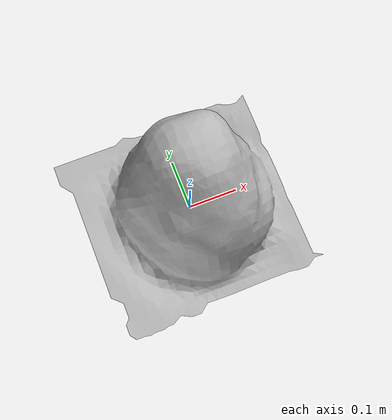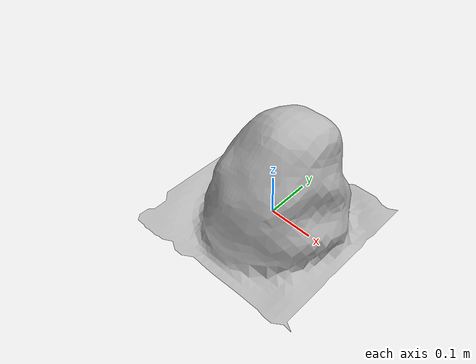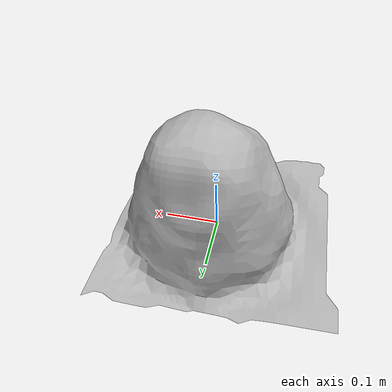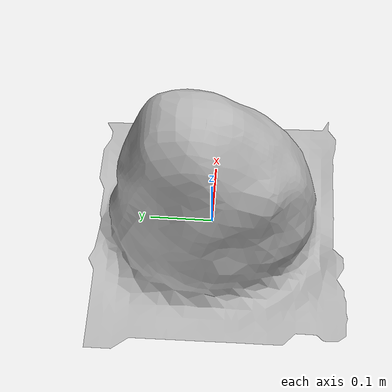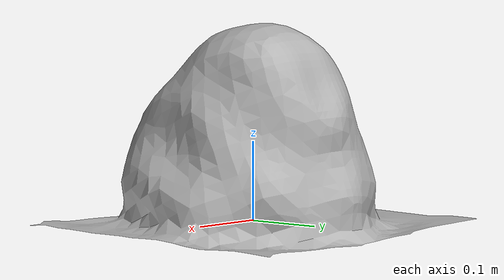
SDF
<?xml version='1.0'?>
<sdf version="1.4">
<model name="rock_3">
  <pose>0 0 0 0 0 0</pose>
  <static>true</static>
    <link name="link">
      <collision name="collision">
          <geometry>
            <mesh><uri>model://rock_3/meshes/rock_3.dae</uri></mesh>
          </geometry>
      </collision>
        <visual name="visual">
          <geometry>
            <mesh><uri>model://rock_3/meshes/rock_3.dae</uri></mesh>
          </geometry>
        </visual>
      </link>
  </model>
</sdf>
